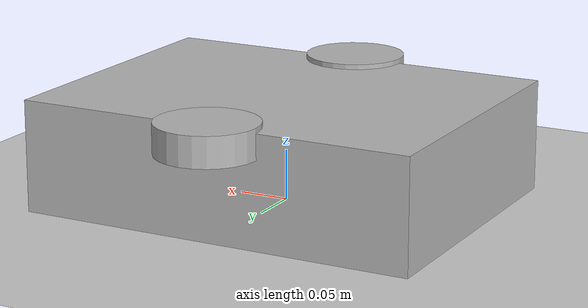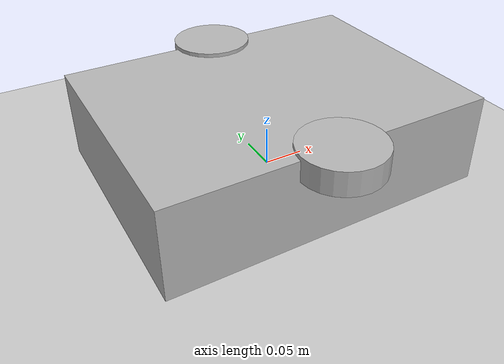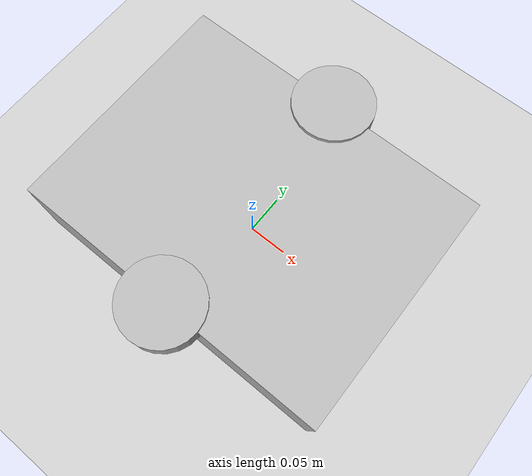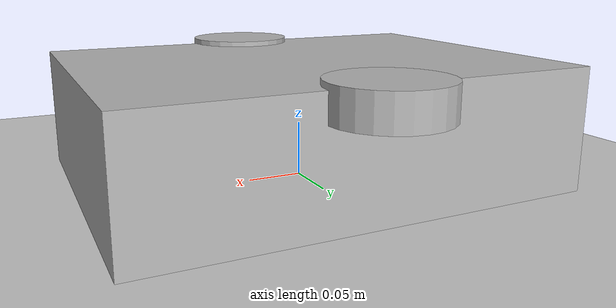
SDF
<?xml version="1.0"?>
<sdf version="1.9">
  <world name="empty">

    <!-- Core systems from ROS vendor (ensures proper plugin loading) -->
    <plugin
      filename="/opt/ros/jazzy/opt/gz_sim_vendor/lib/libgz-sim8-physics-system.so"
      name="gz::sim::systems::Physics"/>

    <plugin
      filename="/opt/ros/jazzy/opt/gz_sim_vendor/lib/libgz-sim8-sensors-system.so"
      name="gz::sim::systems::Sensors"/>

    <plugin
      filename="/opt/ros/jazzy/opt/gz_sim_vendor/lib/libgz-sim8-scene-broadcaster-system.so"
      name="gz::sim::systems::SceneBroadcaster"/>

    <!-- Simple local ground plane -->
    <model name="ground_plane">
      <static>true</static>
      <link name="link">
        <collision name="collision">
          <geometry><plane><normal>0 0 1</normal><size>100 100</size></plane></geometry>
        </collision>
        <visual name="visual">
          <geometry><plane><normal>0 0 1</normal><size>100 100</size></plane></geometry>
        </visual>
      </link>
    </model>

    <!-- Spawn our robot -->
    <include>
      <uri>file:///ws/simulation/models/mybot</uri>
    </include>
  </world>
</sdf>

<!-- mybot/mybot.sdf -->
<sdf version="1.9">
  <model name="mybot">
    <static>false</static>
    <pose>0 0 0.05 0 0 0</pose>

    <!-- Base -->
    <link name="base_link">
      <inertial>
        <mass>4.0</mass>
        <inertia>
          <ixx>0.10</ixx><ixy>0.0</ixy><ixz>0.0</ixz>
          <iyy>0.15</iyy><iyz>0.0</iyz>
          <izz>0.20</izz>
        </inertia>
      </inertial>
      <collision name="base_collision">
        <geometry>
          <box><size>0.40 0.30 0.12</size></box>
        </geometry>
      </collision>
      <visual name="base_visual">
        <geometry>
          <box><size>0.40 0.30 0.12</size></box>
        </geometry>
      </visual>
    </link>

    <!-- Left wheel -->
    <link name="left_wheel">
      <pose>0.0 0.15 0.05 0 0 0</pose>
      <inertial>
        <mass>0.5</mass>
        <inertia><ixx>0.002</ixx><iyy>0.002</iyy><izz>0.002</izz></inertia>
      </inertial>
      <collision name="left_wheel_collision">
        <geometry>
          <cylinder><radius>0.05</radius><length>0.03</length></cylinder>
        </geometry>
      </collision>
      <visual name="left_wheel_visual">
        <geometry>
          <cylinder><radius>0.05</radius><length>0.03</length></cylinder>
        </geometry>
      </visual>
    </link>
    <joint name="left_wheel_joint" type="revolute">
      <parent>base_link</parent>
      <child>left_wheel</child>
      <axis><xyz>0 1 0</xyz><limit><lower>-1e16</lower><upper>1e16</upper></limit></axis>
    </joint>

    <!-- Right wheel -->
    <link name="right_wheel">
      <pose>0.0 -0.15 0.05 0 0 0</pose>
      <inertial>
        <mass>0.5</mass>
        <inertia><ixx>0.002</ixx><iyy>0.002</iyy><izz>0.002</izz></inertia>
      </inertial>
      <collision name="right_wheel_collision">
        <geometry>
          <cylinder><radius>0.05</radius><length>0.03</length></cylinder>
        </geometry>
      </collision>
      <visual name="right_wheel_visual">
        <geometry>
          <cylinder><radius>0.05</radius><length>0.03</length></cylinder>
        </geometry>
      </visual>
    </link>
    <joint name="right_wheel_joint" type="revolute">
      <parent>base_link</parent>
      <child>right_wheel</child>
      <axis><xyz>0 1 0</xyz><limit><lower>-1e16</lower><upper>1e16</upper></limit></axis>
    </joint>

    <!-- Camera -->
    <link name="camera_link">
      <pose>0.15 0 0.15 0 0 0</pose>
      <inertial><mass>0.05</mass><inertia><ixx>1e-5</ixx><iyy>1e-5</iyy><izz>1e-5</izz></inertia></inertial>
      <sensor name="camera" type="camera">
        <always_on>true</always_on>
        <update_rate>15</update_rate>
        <camera>
          <horizontal_fov>1.05</horizontal_fov>
          <image><width>640</width><height>480</height><format>R8G8B8</format></image>
          <clip><near>0.05</near><far>50.0</far></clip>
        </camera>
        <topic>/camera/image</topic>
      </sensor>
    </link>
    <joint name="camera_joint" type="fixed">
      <parent>base_link</parent><child>camera_link</child>
    </joint>

    <!-- 2D LiDAR -->
    <link name="lidar_link">
      <pose>0.12 0 0.14 0 0 0</pose>
      <inertial><mass>0.05</mass><inertia><ixx>1e-5</ixx><iyy>1e-5</iyy><izz>1e-5</izz></inertia></inertial>
      <sensor name="lidar" type="gpu_lidar">
        <always_on>true</always_on>
        <update_rate>15</update_rate>
        <ray>
          <scan>
            <horizontal>
              <samples>720</samples>
              <resolution>1</resolution>
              <min_angle>-3.14159</min_angle>
              <max_angle>3.14159</max_angle>
            </horizontal>
          </scan>
          <range>
            <min>0.12</min>
            <max>10.0</max>
            <resolution>0.01</resolution>
          </range>
        </ray>
        <topic>/scan</topic>
      </sensor>
    </link>
    <joint name="lidar_joint" type="fixed">
      <parent>base_link</parent><child>lidar_link</child>
    </joint>

    <!-- IMU -->
    <link name="imu_link">
      <pose>0 0 0.12 0 0 0</pose>
      <inertial>
        <mass>0.05</mass>
        <inertia>
          <ixx>1e-5</ixx><iyy>1e-5</iyy><izz>1e-5</izz>
          <ixy>0</ixy><ixz>0</ixz><iyz>0</iyz>
        </inertia>
      </inertial>
      <sensor name="imu_sensor" type="imu">
        <always_on>true</always_on>
        <update_rate>200</update_rate>
        <topic>/imu</topic>
        <imu/>
      </sensor>
    </link>
    <joint name="imu_fixed" type="fixed">
      <parent>base_link</parent><child>imu_link</child>
    </joint>

    <!-- Diff-drive (gz-sim8) -->
    <plugin filename="libgz-sim-diff-drive-system.so" name="gz::sim::systems::DiffDrive">
      <left_joint>left_wheel_joint</left_joint>
      <right_joint>right_wheel_joint</right_joint>
      <wheel_separation>0.30</wheel_separation>
      <wheel_radius>0.05</wheel_radius>
      <topic>/cmd_vel</topic>
      <odom_topic>/odom</odom_topic>
      <odom_frame>odom</odom_frame>
      <robot_base_frame>base_link</robot_base_frame>
      <publish_odom>true</publish_odom>
      <publish_tf>false</publish_tf>
    </plugin>

  </model>
</sdf>
